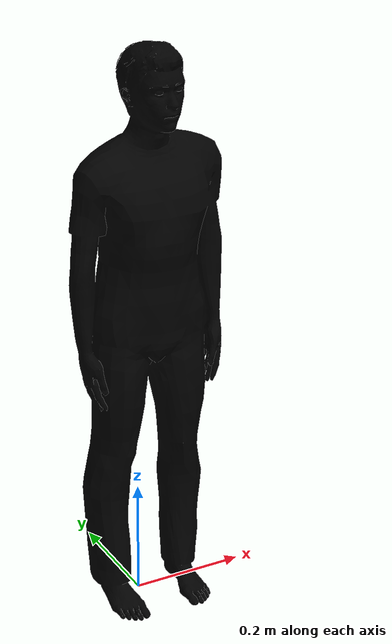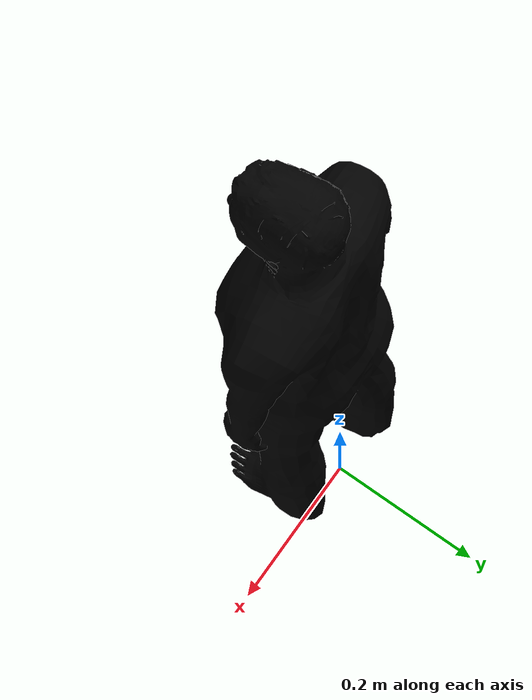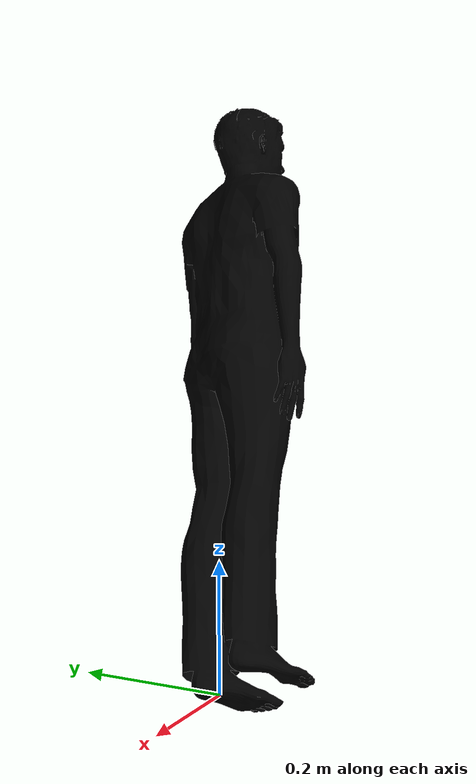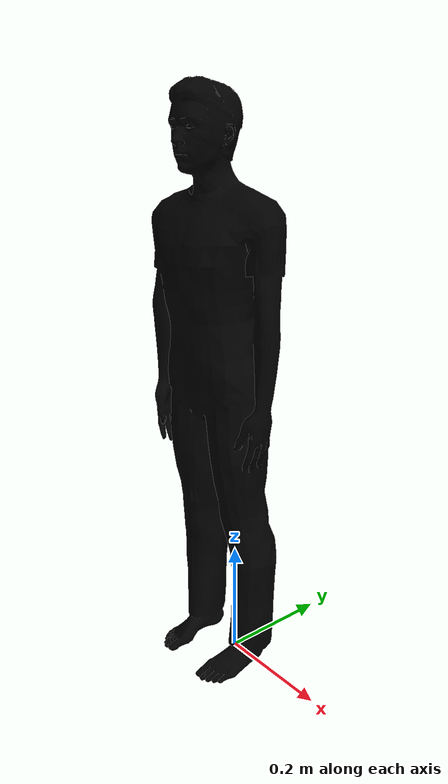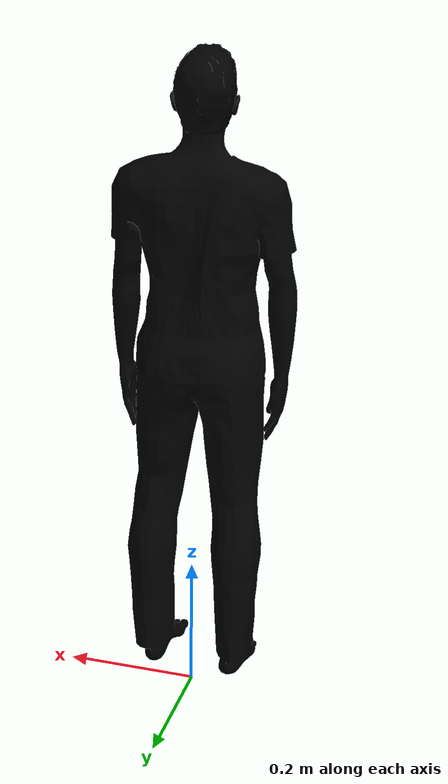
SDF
<?xml version='1.0'?>
<sdf version='1.6'>
  <model name='person_standing'>
    <link name='link'>
      <inertial>
        <pose frame=''>0 -0.1 0.95 0 -0 0</pose>
        <mass>80</mass>
        <inertia>
          <ixx>24.88</ixx>
          <ixy>0</ixy>
          <ixz>0</ixz>
          <iyy>25.73</iyy>
          <iyz>0</iyz>
          <izz>2.48</izz>
        </inertia>
      </inertial>
      <self_collide>0</self_collide>
      <enable_wind>0</enable_wind>
      <kinematic>0</kinematic>
      <pose frame=''>0 0 0 0 -0 0</pose>
      <gravity>1</gravity>
      <visual name='visual'>
        <pose frame=''>0 0 0.02 0.04 -0 0</pose>
        <geometry>
          <mesh>
            <uri>model://person_standing/meshes/standing.dae</uri>
            <scale>0.5 0.5 0.5</scale>
          </mesh>
        </geometry>
        <transparency>0</transparency>
        <cast_shadows>1</cast_shadows>
        <material>
          <shader type='vertex'>
            <normal_map>__default__</normal_map>
          </shader>
          <script>
            <name>ModelPreview_1::link::visual_MATERIAL_</name>
          </script>
          <ambient>0 0 0 1</ambient>
          <diffuse>0 0 0 1</diffuse>
          <specular>0 0 0 1</specular>
          <emissive>0 0 0 1</emissive>
        </material>
      </visual>
      <collision name='bottom'>
        <laser_retro>0</laser_retro>
        <max_contacts>10</max_contacts>
        <pose frame=''>0 -0.1 0.01 0 -0 0</pose>
        <geometry>
          <box>
            <size>0.5 0.35 0.02</size>
          </box>
        </geometry>
        <surface>
          <friction>
            <ode>
              <mu>1</mu>
              <mu2>1</mu2>
              <fdir1>0 0 0</fdir1>
              <slip1>0</slip1>
              <slip2>0</slip2>
            </ode>
            <torsional>
              <coefficient>1</coefficient>
              <patch_radius>0</patch_radius>
              <surface_radius>0</surface_radius>
              <use_patch_radius>1</use_patch_radius>
              <ode>
                <slip>0</slip>
              </ode>
            </torsional>
          </friction>
          <bounce>
            <restitution_coefficient>0</restitution_coefficient>
            <threshold>1e+06</threshold>
          </bounce>
          <contact>
            <collide_without_contact>0</collide_without_contact>
            <collide_without_contact_bitmask>1</collide_without_contact_bitmask>
            <collide_bitmask>1</collide_bitmask>
            <ode>
              <soft_cfm>0</soft_cfm>
              <soft_erp>0.2</soft_erp>
              <kp>1e+13</kp>
              <kd>1</kd>
              <max_vel>0.01</max_vel>
              <min_depth>0</min_depth>
            </ode>
            <bullet>
              <split_impulse>1</split_impulse>
              <split_impulse_penetration_threshold>-0.01</split_impulse_penetration_threshold>
              <soft_cfm>0</soft_cfm>
              <soft_erp>0.2</soft_erp>
              <kp>1e+13</kp>
              <kd>1</kd>
            </bullet>
          </contact>
        </surface>
      </collision>
      <collision name='person'>
        <laser_retro>0</laser_retro>
        <max_contacts>10</max_contacts>
        <pose frame=''>0 0 0.02 0.04 -0 0</pose>
        <geometry>
          <mesh>
            <uri>/home/mariemadel/.gazebo/models/person_standing/meshes/standing.dae</uri>
            <scale>1 1 1</scale>
          </mesh>
        </geometry>
        <surface>
          <friction>
            <ode>
              <mu>1</mu>
              <mu2>1</mu2>
              <fdir1>0 0 0</fdir1>
              <slip1>0</slip1>
              <slip2>0</slip2>
            </ode>
            <torsional>
              <coefficient>1</coefficient>
              <patch_radius>0</patch_radius>
              <surface_radius>0</surface_radius>
              <use_patch_radius>1</use_patch_radius>
              <ode>
                <slip>0</slip>
              </ode>
            </torsional>
          </friction>
          <bounce>
            <restitution_coefficient>0</restitution_coefficient>
            <threshold>1e+06</threshold>
          </bounce>
          <contact>
            <collide_without_contact>0</collide_without_contact>
            <collide_without_contact_bitmask>1</collide_without_contact_bitmask>
            <collide_bitmask>1</collide_bitmask>
            <ode>
              <soft_cfm>0</soft_cfm>
              <soft_erp>0.2</soft_erp>
              <kp>1e+13</kp>
              <kd>1</kd>
              <max_vel>0.01</max_vel>
              <min_depth>0</min_depth>
            </ode>
            <bullet>
              <split_impulse>1</split_impulse>
              <split_impulse_penetration_threshold>-0.01</split_impulse_penetration_threshold>
              <soft_cfm>0</soft_cfm>
              <soft_erp>0.2</soft_erp>
              <kp>1e+13</kp>
              <kd>1</kd>
            </bullet>
          </contact>
        </surface>
      </collision>
    </link>
    <static>0</static>
    <allow_auto_disable>1</allow_auto_disable>
  </model>
</sdf>
